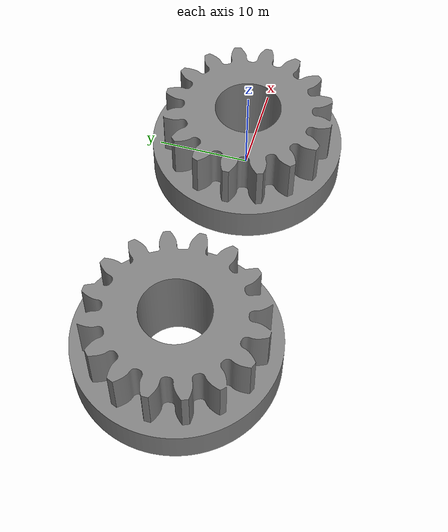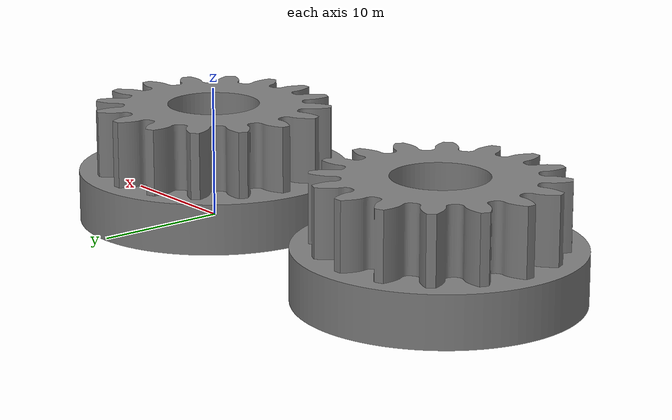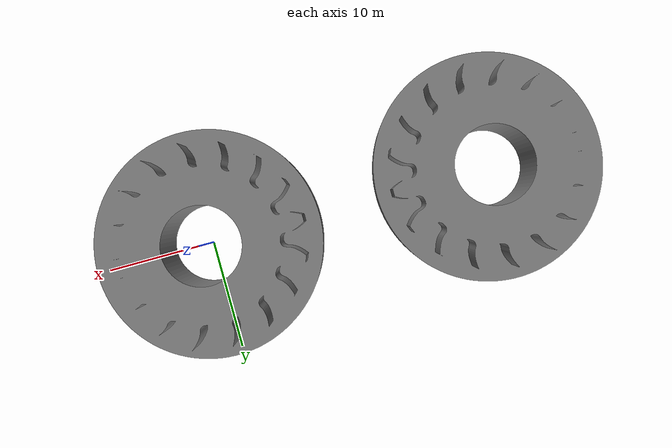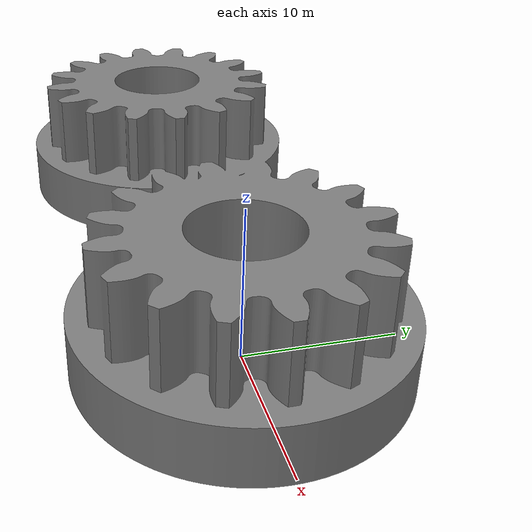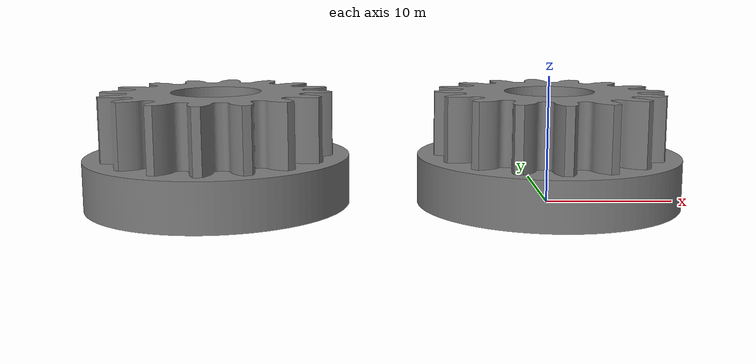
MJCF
<mujoco model="FabConvert.com_servo_gear_x2">
  <default>
    <default class="visual">
      <geom group="2" type="mesh" contype="0" conaffinity="0"/>
    </default>
    <default class="collision">
      <geom group="3" type="mesh"/>
    </default>
  </default>
  <asset>
    <mesh file="FabConvert.com_servo_gear_x2.obj"/>
  </asset>
  <worldbody>
    <body name="FabConvert.com_servo_gear_x2">
      <geom mesh="FabConvert.com_servo_gear_x2" class="visual"/>
      <geom mesh="FabConvert.com_servo_gear_x2" class="collision"/>
    </body>
  </worldbody>
</mujoco>
